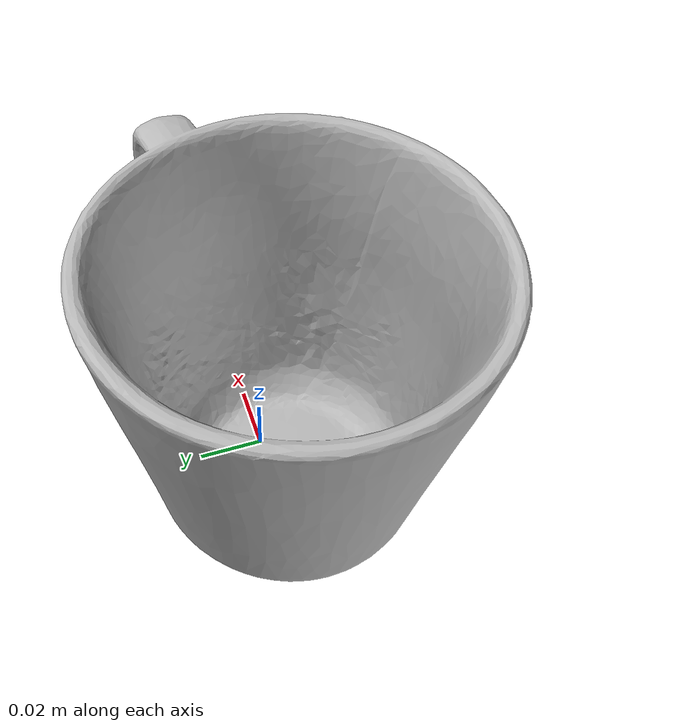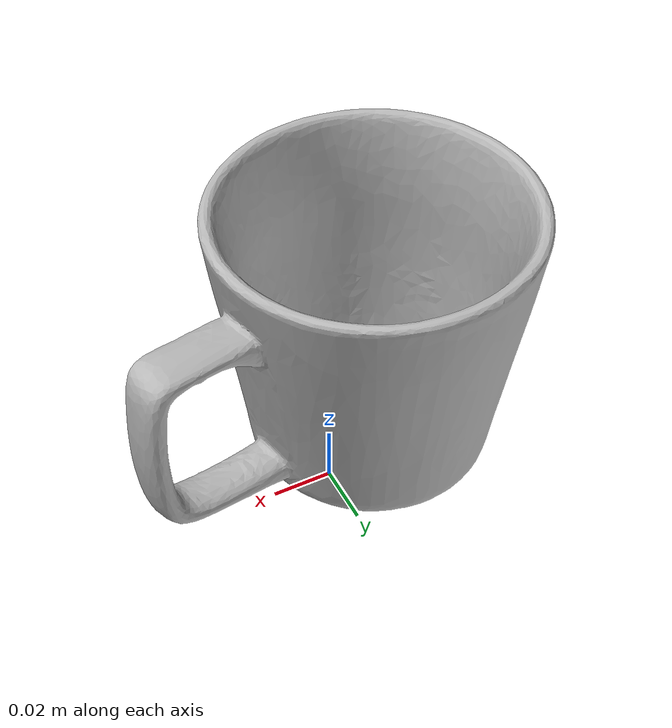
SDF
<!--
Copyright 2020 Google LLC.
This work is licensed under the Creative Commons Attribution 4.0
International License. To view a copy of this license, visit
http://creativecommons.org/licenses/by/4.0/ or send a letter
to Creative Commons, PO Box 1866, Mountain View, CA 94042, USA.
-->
<?xml version="1.0" ?>
<sdf version="1.6">
  <model name="Ecoforms_Cup_B4_SAN">
    <link name="link_0">
      <visual name="visual">
        <geometry>
          <mesh>
            <uri>meshes/model.obj</uri>
          </mesh>
        </geometry>
      </visual>
      <collision name="collision_0">
        <geometry>
          <mesh>
            <uri>meshes/model.obj</uri>
          </mesh>
        </geometry>
      </collision>
    </link>
  </model>
</sdf>
